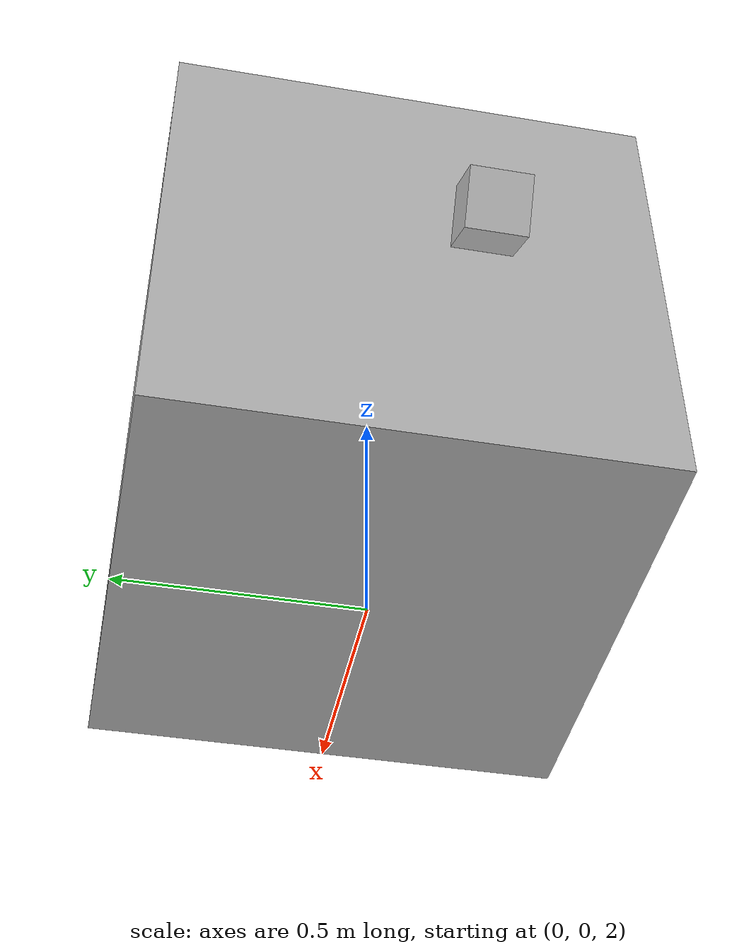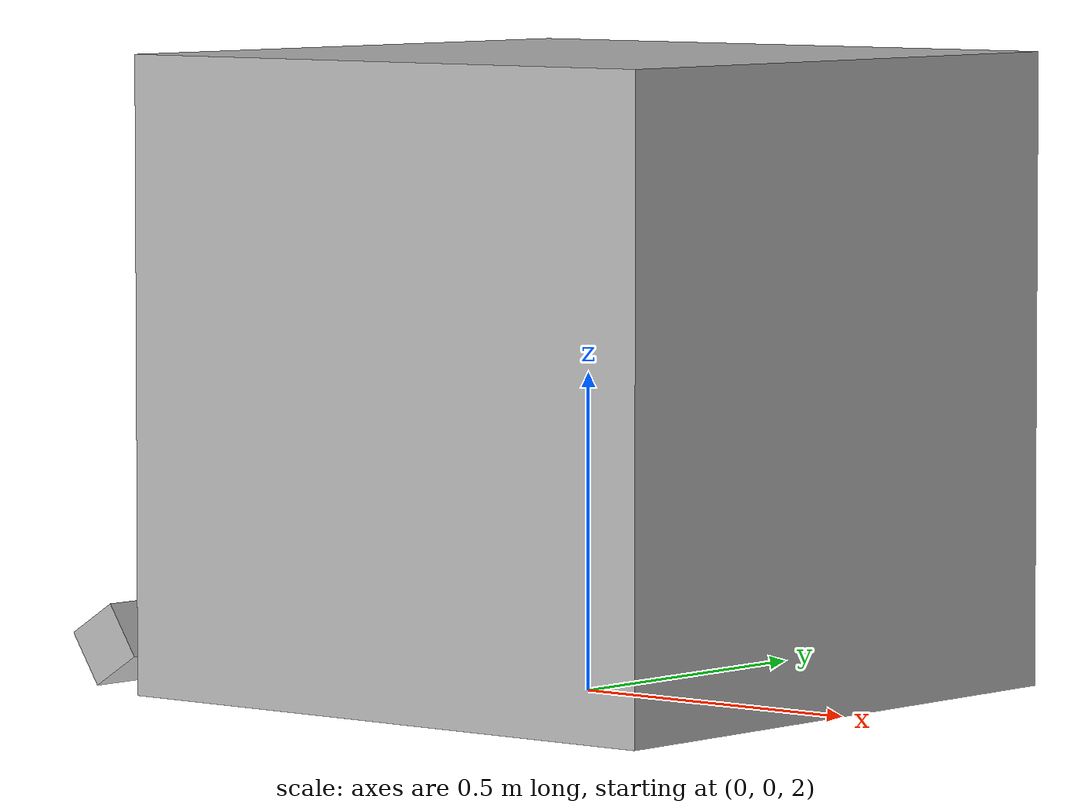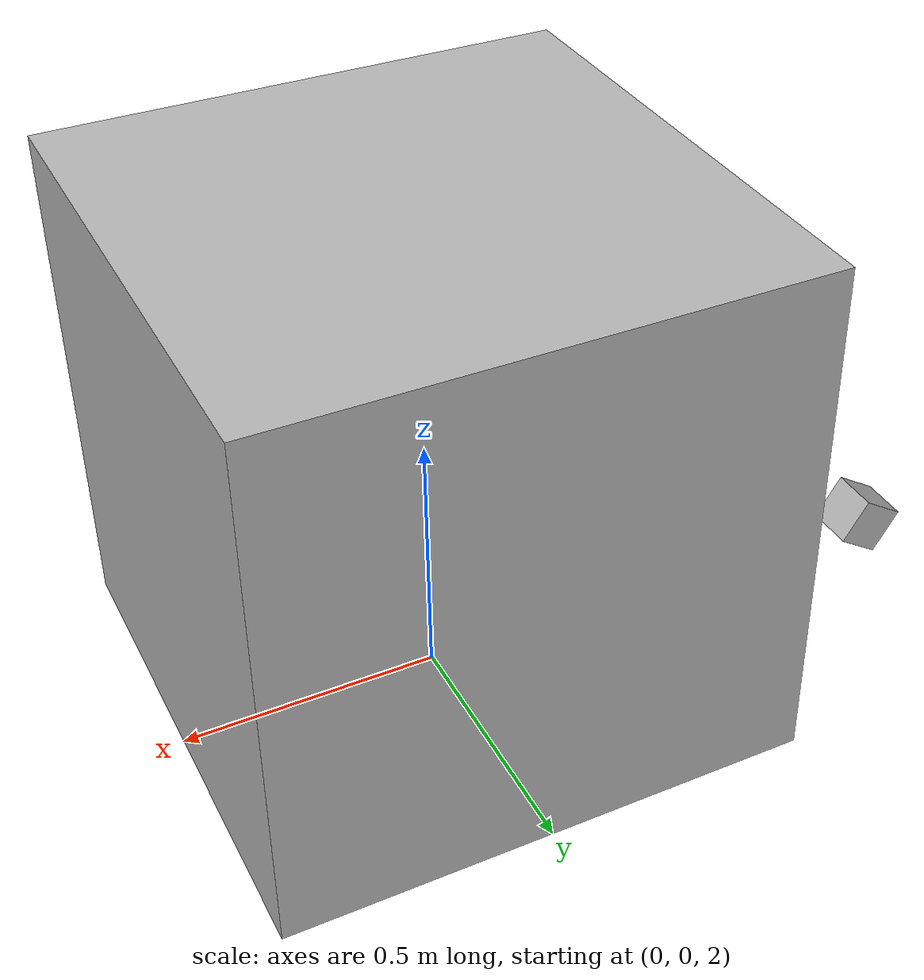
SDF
<?xml version="1.0" ?>
<sdf version="1.6">
  <model name='unit_box'>
    <pose>0 0 2.5 0 0 0</pose>
    <link name='cam_link'>
      <visual name='visual'>
        <geometry>
          <box>
            <size>1 1 1</size>
          </box>
        </geometry>
      </visual>
    </link>
  </model>
  <light name='user_directional_light_0' type='directional'>
    <pose>0 0 1 0 0 0</pose>
  </light>
  <model name='camera'>
    <static>true</static>
    <pose>-1 0 2 0 1 0</pose>
    <link name='cam_link'>
      <visual name='visual'>
        <geometry>
          <box>
            <size>0.1 0.1 0.1</size>
          </box>
        </geometry>
      </visual>
      <sensor name='my_camera' type='camera'>
        <camera>
          <save enabled="true">
            <path>/tmp/camera_workspace</path>
          </save>
          <horizontal_fov>1.047</horizontal_fov>
          <image>
            <width>1920</width>
            <height>1080</height>
          </image>
          <clip>
            <near>0.1</near>
            <far>100</far>
          </clip>
        </camera>
        <always_on>1</always_on>
        <update_rate>30</update_rate>
      </sensor><model name='unit_box'>
    <pose>0 0 2.5 0 -0 0</pose>
    <link name='cam_link'>
      <visual name='visual'>
        <geometry>
          <box>
            <size>1 1 1</size>
          </box>
        </geometry>
      </visual>
    </link>
  </model>
  <light name='user_directional_light_0' type='directional'>
    <pose>0 0 1 0 0 0</pose>
  </light>
  <model name='camera'>
    <static>true</static>
    <pose>-1 0 2 0 1 0</pose>
    <link name='cam_link'>
      <visual name='visual'>
        <geometry>
          <box>
            <size>0.1 0.1 0.1</size>
          </box>
        </geometry>
      </visual>
      <sensor name='my_camera' type='camera'>
        <camera>
          <save enabled="true">
            <path>/tmp/camera_workspace</path>
          </save>
          <horizontal_fov>1.047</horizontal_fov>
          <image>
            <width>1920</width>
            <height>1080</height>
          </image>
          <clip>
            <near>0.1</near>
            <far>100</far>
          </clip>
        </camera>
        <always_on>1</always_on>
        <update_rate>30</update_rate>
      </sensor>
    </link>
  </model>
    </link>
  </model>
</sdf>
